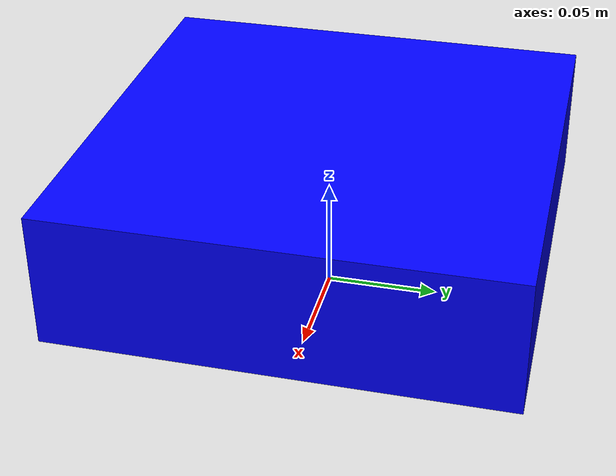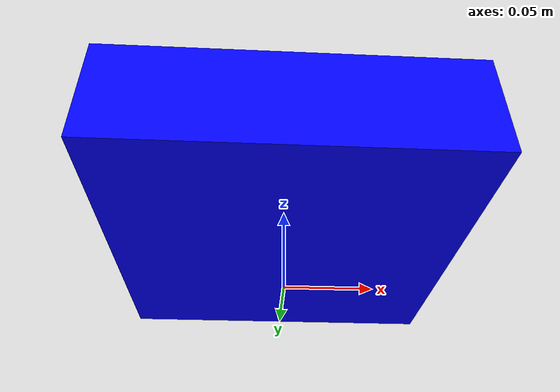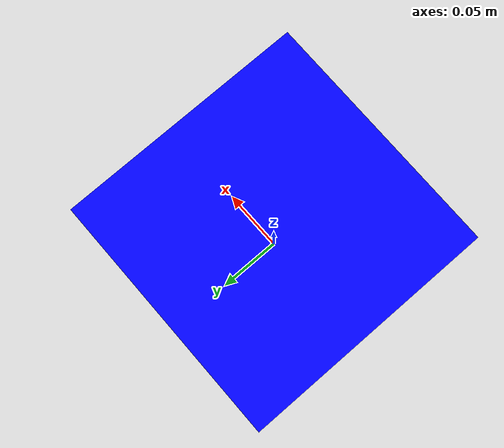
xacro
<?xml version="1.0"?>
<robot xmlns:xacro="http://www.ros.org/wiki/xacro" name="dummy_uav">

  <!-- Add odom frame to support gazebo_ros_p3d plugin -->
  <!-- Main body -->
  <link name="base_link">
    <inertial>
      <mass value="1.0"/>
      <origin xyz="0 0 0" rpy="0 0 0"/>
      <inertia ixx="0.01" iyy="0.01" izz="0.02" ixy="0" ixz="0" iyz="0"/>
    </inertial>

    <visual>
      <geometry><box size="0.2 0.2 0.06"/></geometry>
      <origin xyz="0 0 0" rpy="0 0 0"/>
      <material name="Blue"><color rgba="0 0 1 1"/></material>
    </visual>

  </link>

  <!-- Headlight Link -->

  <!-- Bat Link oscillation-->
  <link name="bat_link">
    <inertial>
      <mass value="0.05"/>
      <origin xyz="0 0 0" rpy="0 0 0"/>
      <inertia ixx="0.001" iyy="0.001" izz="0.001" ixy="0" ixz="0" iyz="0"/>
    </inertial>

  </link>

  <!-- Flap Joint -->
  <joint name="flap_joint" type="revolute">
    <parent link="bat_link"/>
    <child link="base_link"/>
    <origin xyz="0 0 0.05" rpy="0 0 0"/>
    <axis xyz="1 0 0"/>
    <limit effort="10" velocity="5.0" lower="-1.5" upper="1.5"/>
    <dynamics damping="0.1"/>
  </joint>
  <!-- Bat Plugin -->
  <gazebo>
    <plugin name="flapping_plugin" filename="libflapping_plugin.so">
      <joint_name>flap_joint</joint_name>
      <frequency>3.0</frequency>
      <amplitude>0.1</amplitude>
      <z_amplitude>0.05</z_amplitude>
      <z_frequency>1.0</z_frequency>
    </plugin>
  </gazebo>

  <!-- Headlight Joint -->

  <!-- Headlight Gazebo Plugin -->

  <!-- IMU Link -->
  <link name="imu_link">
    <inertial>
      <mass value="0.001" />
      <origin xyz="0 0 0" rpy="0 0 0" />
      <inertia ixx="1e-6" iyy="1e-6" izz="1e-6" ixy="0" ixz="0" iyz="0" />
    </inertial>
  </link>

  <joint name="imu_joint" type="fixed">
    <parent link="base_link"/>
    <child link="imu_link"/>
    <origin xyz="0 0 0" rpy="0 0 0"/>
  </joint>

  <gazebo reference="imu_link">
    <gravity>true</gravity>
    <sensor name="imu_sensor" type="imu">
      <always_on>true</always_on>
      <update_rate>400</update_rate>
      <visualize>true</visualize>
      <topic>__default_topic__</topic>
      <plugin filename="libgazebo_ros_imu_sensor.so" name="imu_plugin">
        <topicName>imu/data</topicName>
        <bodyName>imu_link</bodyName>
        <updateRateHZ>400.0</updateRateHZ>
        <gaussianNoise>0.0</gaussianNoise>
        <xyzOffset>0 0 0</xyzOffset>
        <rpyOffset>0 0 0</rpyOffset>
        <frameName>imu_link</frameName>
        <initialOrientationAsReference>false</initialOrientationAsReference>
      </plugin>
      <pose>0 0 0 0 0 0</pose>
    </sensor>
  </gazebo>

  <link name="camera_link">
    <inertial>
      <mass value="0.001" />
      <origin xyz="0 0 0" rpy="0 0 0" />
      <inertia ixx="1e-6" iyy="1e-6" izz="1e-6" ixy="0" ixz="0" iyz="0" />
    </inertial>
  </link>

  <joint name="camera_joint" type="fixed">
    <parent link="base_link"/>
    <child link="camera_link"/>
    <!-- Adjust these as needed -->
    <origin xyz="0.05 0 0.05" rpy="0 0 0"/>
  </joint>
  <!-- Camera Frame -->
  <link name="camera_optical_frame"/>
  <joint name="camera_optical_joint" type="fixed">
    <parent link="camera_link"/>
    <child link="camera_optical_frame"/>
    <origin xyz="0 0 0" rpy="-1.5708 0 -1.5708"/> <!-- Align to OpenCV convention -->
  </joint>
  <!-- Camera Sensor -->
  <gazebo reference="camera_link">
    <sensor name="camera_sensor" type="camera">
      <always_on>true</always_on>
      <update_rate>25</update_rate>
      <visualize>true</visualize>
      <camera>
        <horizontal_fov>1.39626</horizontal_fov>  <!--~80 deg -->
        <image>
          <width>640</width>
          <height>800</height>
          <format>R8G8B8</format>
        </image>
        <clip>
          <near>0.1</near>
          <far>200</far>
        </clip>
      </camera>
      <plugin name="camera_controller" filename="libgazebo_ros_camera.so">
        <cameraName>front_camera</cameraName>
        <imageTopicName>image_raw</imageTopicName>
        <cameraInfoTopicName>camera_info</cameraInfoTopicName>
        <frameName>camera_optical_frame</frameName>
      </plugin>
    </sensor>
  </gazebo>

  <gazebo reference="base_link">
    <gravity>true</gravity>
    <material>Gazebo/Blue</material>
  </gazebo>

</robot>
